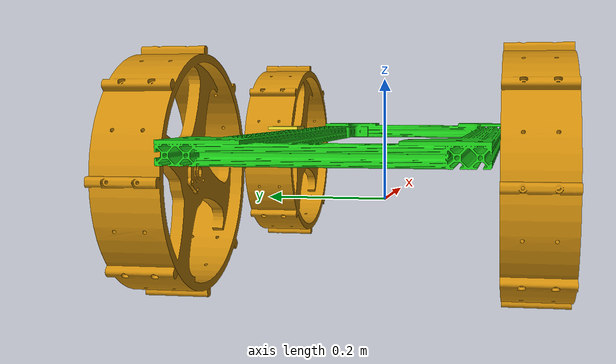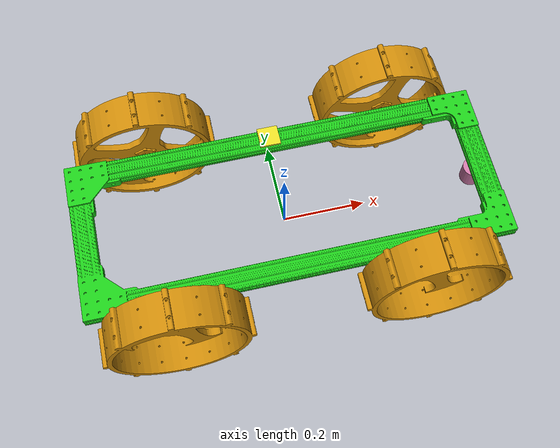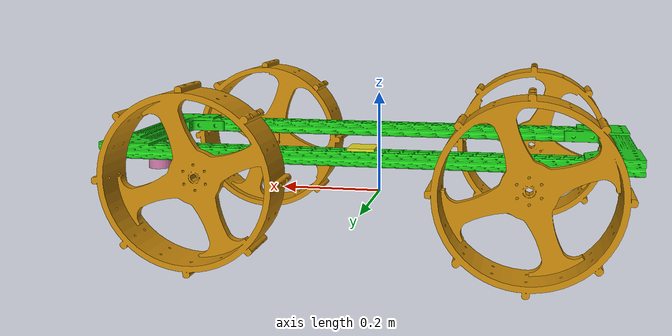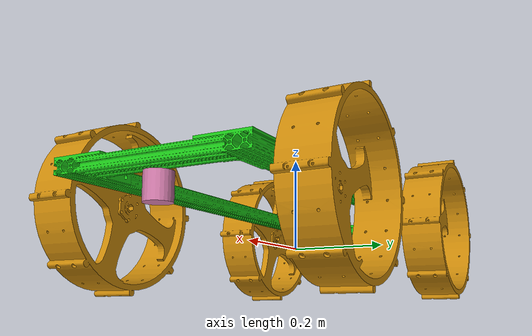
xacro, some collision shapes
<?xml version="1.0"?>
<robot xmlns:xacro="http://www.ros.org/wiki/xacro" name="moony">

<xacro:include filename="$(find moony_gazebo)/gazebo/diff_drive_gazebo.xacro" />

<gazebo>
    <plugin name="gazebo_ros_control" filename="libgazebo_ros_control.so">
        <robotNamespace>/moony</robotNamespace>
    </plugin>
</gazebo>

<!-- CONSTANTS -->
<xacro:property name="base_mass" value="4.11" />
<xacro:property name="base_height" value=".03" />
<xacro:property name="wheel_mass" value="2" />
<xacro:property name="wheel_x" value="0.3" />
<xacro:property name="wheel_y" value="${(.38/2)+.04+.01}" />
<!-- y = width/2 of frame + wheel COG to wall + buffer -->
<!-- for XACRO math - SPACES matter -->
<xacro:property name="wheel_z" value="${-0.02 - base_height/2}" />
<xacro:property name="wheel_r" value="${radians(90)}" />
<xacro:property name="wheel_p" value="0" />
<xacro:property name="wheel_y" value="0" />
<xacro:property name="wheel_inertia_ixx" value="0.02" />
<xacro:property name="wheel_inertia_iyy" value="0.02" />
<xacro:property name="wheel_inertia_izz" value="0.04" />
<xacro:property name="wheel_collision_radius" value="0.17" />
<xacro:property name="wheel_collision_length" value="0.09" />
<xacro:property name="wheel_mesh" value="package://moony_description/models/meshes/wheel.dae" />
<xacro:property name="wheel_effort" value="0.1" />
<xacro:property name="wheel_velocity" value="1" />
<xacro:property name="wheel_static_contact_stiffness" value="100000" />
<xacro:property name="wheel_dynamic_contact_stiffness" value="100000" />
<xacro:property name="wheel_static_friction_coeff" value="10" />
<xacro:property name="wheel_dynamic_friction_coeff" value="10" />

<!-- IMPORTS -->
<!-- Import all Gazebo-customization elements, including Gazebo colors -->
  <!-- THIS DID NOT WORK - you need to have the additional xacro with the proper headers: xml version and robot declaration -->
  <!-- Import Rviz colors -->

<!-- MACROS -->
<xacro:macro name="individual_wheel" params="num x y r">
   <link name="wheel_${num}_link">
        <inertial>
            <origin rpy="0 0 0" xyz="0 0 0"/>
            <mass value="${wheel_mass}" />
            <inertia ixx="${wheel_inertia_ixx}" ixy="0" ixz="0" iyy="${wheel_inertia_iyy}" iyz="0" izz="${wheel_inertia_izz}"/>
             <!-- values taken from solidworks; the origin is the position of the part
                w.r.t its axes for the second moment of mass values  -->
        </inertial>

        <collision>
            <origin rpy="0 0 0" xyz="0 0 0"/> <!-- pre joint orientation -->
            <geometry>
                <cylinder radius="${wheel_collision_radius}" length="${wheel_collision_length}"/>
            </geometry>
        </collision>

        <visual>
            <origin rpy="0 0 0" xyz="0 0 0"/> <!-- center of the wheel -->
            <geometry>
                <mesh filename="${wheel_mesh}"/>
            </geometry>
        </visual>
    </link>

        <gazebo reference="wheel_${num}_link">
            <kp>100000.0</kp>   <!-- kp: This coefficient sets the static contact stiffness -->
            <kd>100000.0</kd>   <!-- kd: This coefficient sets the dynamic contact stiffness -->
            <mu1>10.0</mu1>     <!-- mu1: The static friction coefficient -->
            <mu2>10.0</mu2>     <!-- mu2: The dynamic friction coefficient. -->
        </gazebo>

    <joint name="wheel_${num}_joint" type="continuous">
        <parent link="base_link"/>
        <child link="wheel_${num}_link"/>
        <origin xyz="${x} ${y} ${wheel_z}" rpy="${r} ${wheel_p} ${wheel_y}"/> <!-- joint location -->
        <limit effort="${wheel_effort}" velocity="${wheel_velocity}"/>
        <axis xyz="0 0 1"/>
    </joint>

    <transmission name="wheel_tran_${num}">
        <type>transmission_interface/SimpleTransmission</type>
        <joint name="wheel_${num}_joint">
            <hardwareInterface>hardware_interface/VelocityJointInterface</hardwareInterface>
        </joint>
        <actuator name="wheel_motor_${num}">
            <hardwareInterface>VelocityJointInterface</hardwareInterface>
            <mechanicalReduction>1</mechanicalReduction>
        </actuator>
    </transmission>
</xacro:macro>

<!-- note: units are meters, kilograms, and radians -->

    <link name="base_footprint" />

    <joint name="base_joint" type="fixed">
     <origin xyz="0 0 .1" rpy="0 0 0" />
     <parent link="base_footprint"/>
     <child link="base_link"/>
   </joint>
        <!-- dummy prevents laser from publishing -->

    <link name="base_link">
        <inertial>
            <origin rpy="0 0 0" xyz="0 0 0"/>
            <mass value="${base_mass}" />
            <inertia ixx="0.1" ixy="0" ixz="0" iyy="0.62" iyz="0" izz="0.52"/>
             <!-- values taken from solidworks  -->
        </inertial>
        <collision>
            <origin rpy="0 0 0" xyz="0 0 0"/> <!-- center of the wheel -->
            <geometry>
                <box size="1 .38 ${base_height}"/> -->
            </geometry>
        </collision>
        <visual>
            <origin rpy="0 0 0" xyz="0 0 0"/>
            <geometry>
                <mesh filename="package://moony_description/models/meshes/frame.dae"/>
            </geometry>
        </visual>
    </link>

   <xacro:individual_wheel num="1" x="${1.0 * wheel_x}" y="${1.0 * .24}" r="${-1 * wheel_r}"/>
   <xacro:individual_wheel num="2" x="${-1.0 * wheel_x}" y="${1.0 * .24}" r="${-1 * wheel_r}"/>
   <xacro:individual_wheel num="3" x="${1.0 * wheel_x}" y="${-1.0 * .24}" r="${1 * wheel_r}"/>
   <xacro:individual_wheel num="4" x="${-1.0 * wheel_x}" y="${-1.0 * .24}" r="${1 * wheel_r}"/>

   <xacro:differential_drive prefix="front" left="1" right="3"/>

     <!-- Lidar Link -->
  <link name="lidar_link">
    <collision>
      <origin xyz="0 0 ${.05/2}" rpy="0 0 0"/>
      <geometry>
        <cylinder radius="${0.025}" length=".05"/>
      </geometry>
    </collision>

    <visual>
      <origin xyz="0 0 0" rpy="0 0 0"/>
      <geometry>
        <mesh filename="package://moony_description/models/meshes/lidar.dae"/>
      </geometry>
    </visual>

    <inertial>
      <origin xyz="0 0 0" rpy="0 0 0"/>
      <mass value=".077"/>
      <inertia
        ixx=".00007" ixy="0.0" ixz="0.0"
        iyy=".00003" iyz="0.0"
        izz=".00008"/>
    </inertial>
  </link>

    <gazebo reference="lidar_link">
        <kp>100000.0</kp>   <!-- kp: This coefficient sets the static contact stiffness -->
        <kd>100000.0</kd>   <!-- kd: This coefficient sets the dynamic contact stiffness -->
        <mu1>10.0</mu1>     <!-- mu1: The static friction coefficient -->
        <mu2>10.0</mu2>     <!-- mu2: The dynamic friction coefficient. -->
    </gazebo>

    <joint name="lidar_joint" type="fixed">
        <parent link="base_link"/>
        <child link="lidar_link"/>
        <origin xyz=".47 0 ${-0.015 - 0.005/2 -0.001}" rpy="${radians(180)} 0 0"/> <!-- joint location -->
    </joint>

<!-- lidar sensor -->
  <gazebo reference="lidar_link">
    <sensor type="ray" name="front_rplidar_sensor">
      <pose>0 0 0 0 0 0</pose>
      <visualize>true</visualize>
      <update_rate>40</update_rate>
      <ray>
        <scan>
          <horizontal>
            <samples>720</samples>
            <resolution>1</resolution>
            <min_angle>${-radians(360)}</min_angle>
            <max_angle>${radians(360)}</max_angle>
          </horizontal>
        </scan>
        <range>
          <min>0.10</min>
          <max>30.0</max>
          <resolution>0.01</resolution>
        </range>
        <noise>
          <type>gaussian</type>
          <mean>0.0</mean>
          <stddev>0.01</stddev>
        </noise>
      </ray>
      <plugin name="gazebo_ros_front_rplidar_controller" filename="libgazebo_ros_laser.so">
        <topicName>/moony/laser/scan</topicName>
        <frameName>lidar_link</frameName>
      </plugin>
    </sensor>
  </gazebo>

<!-- IMU sensor -->
 <link name="imu_link">
    <collision>
      <origin xyz="0 0 ${.05/2}" rpy="0 0 0"/>
      <geometry>
        <box size="0.05 0.05 0.005"/>
      </geometry>
    </collision>

    <visual>
      <origin xyz="0 0 0" rpy="0 0 0"/>
      <geometry>
        <box size="0.05 0.05 0.005"/>
      </geometry>
    </visual>

    <inertial>
      <origin xyz="0 0 0" rpy="0 0 0"/>
      <mass value=".03"/> <!-- made up -->
      <inertia
        ixx=".00002" ixy="0.0" ixz="0.0"
        iyy=".00002" iyz="0.0"
        izz=".00002"/> <!-- made up -->
    </inertial>
  </link>

    <joint name="imu_joint" type="fixed">
        <parent link="base_link"/>
        <child link="imu_link"/>
        <origin xyz="0 0.17 ${+0.015 + 0.005/2 +0.001}" rpy="0 0 0"/> <!-- joint location -->
    </joint>

  <gazebo reference="imu_link">
    <material>Gazebo/Yellow</material>
    <gravity>true</gravity>
    <sensor name="imu_sensor" type="imu">
      <always_on>true</always_on>
      <update_rate>100</update_rate>
      <visualize>true</visualize>
      <topic>__default_topic__</topic>
      <plugin filename="libgazebo_ros_imu_sensor.so" name="imu_plugin">
        <topicName>/moony/imu</topicName>
        <bodyName>imu_link</bodyName>
        <updateRateHZ>10.0</updateRateHZ>
        <gaussianNoise>0.0</gaussianNoise>
        <xyzOffset>0 0 0</xyzOffset>
        <rpyOffset>0 0 0</rpyOffset>
        <frameName>imu_link</frameName>
        <initialOrientationAsReference>false</initialOrientationAsReference>
      </plugin>
      <pose>0 0 0 0 0 0</pose>
    </sensor>
  </gazebo>
</robot>
